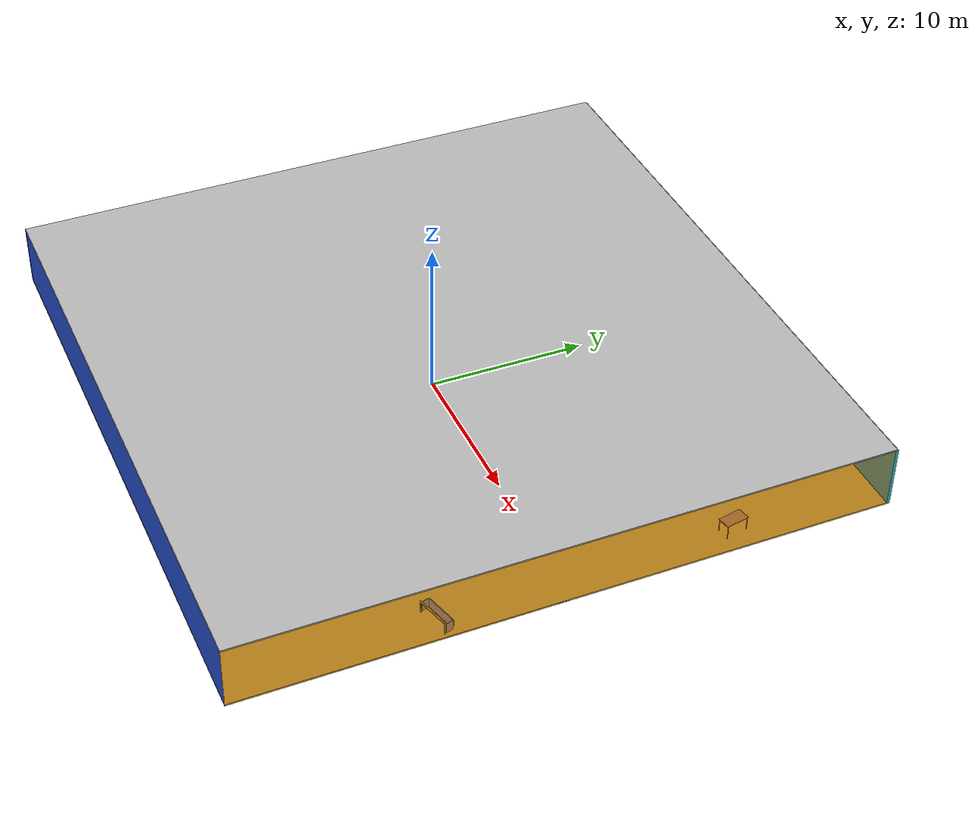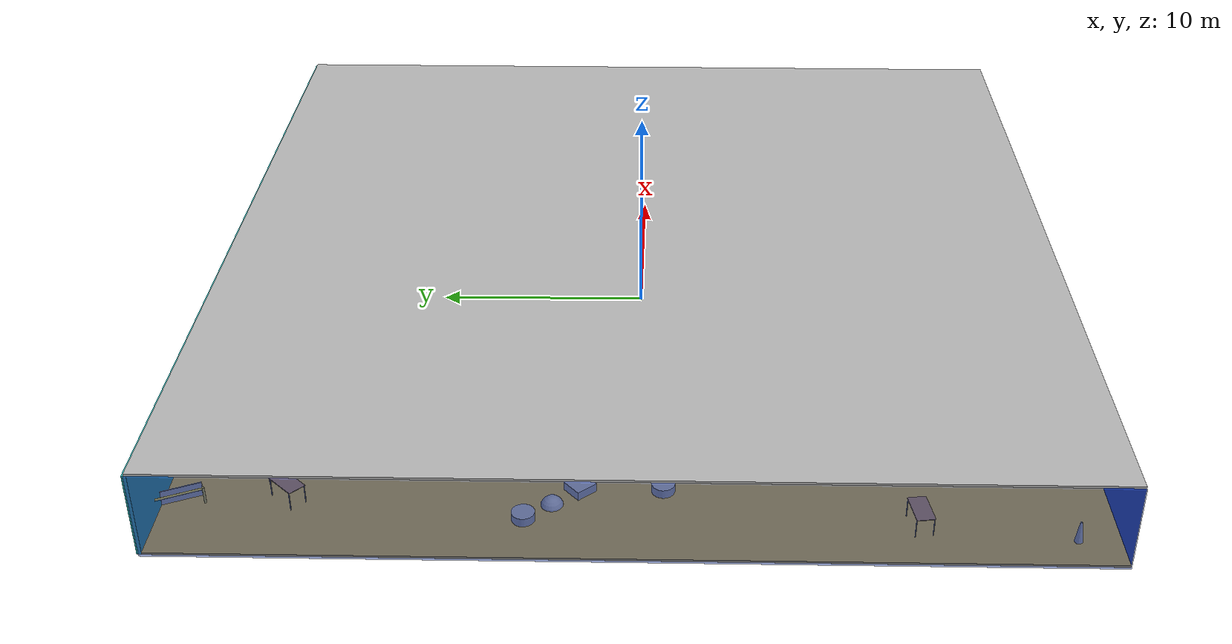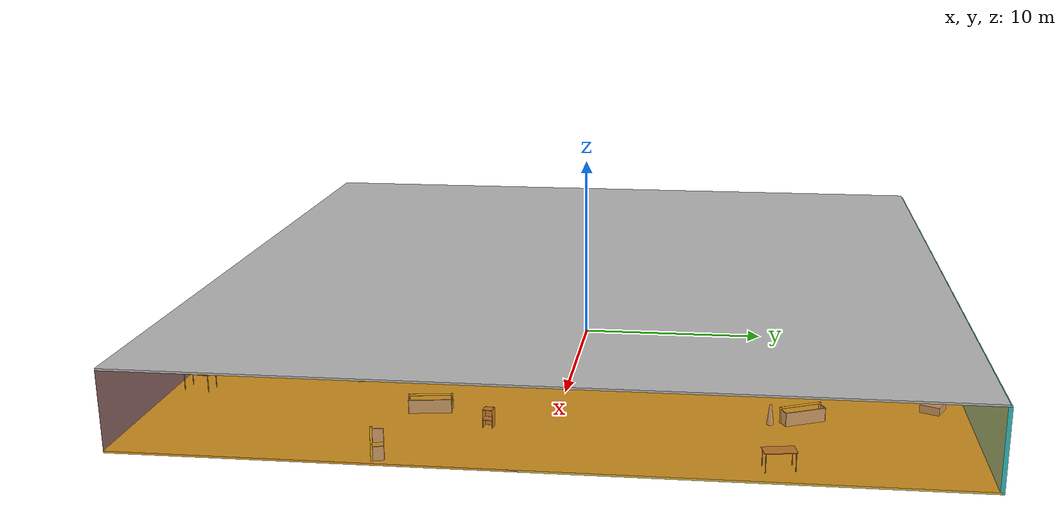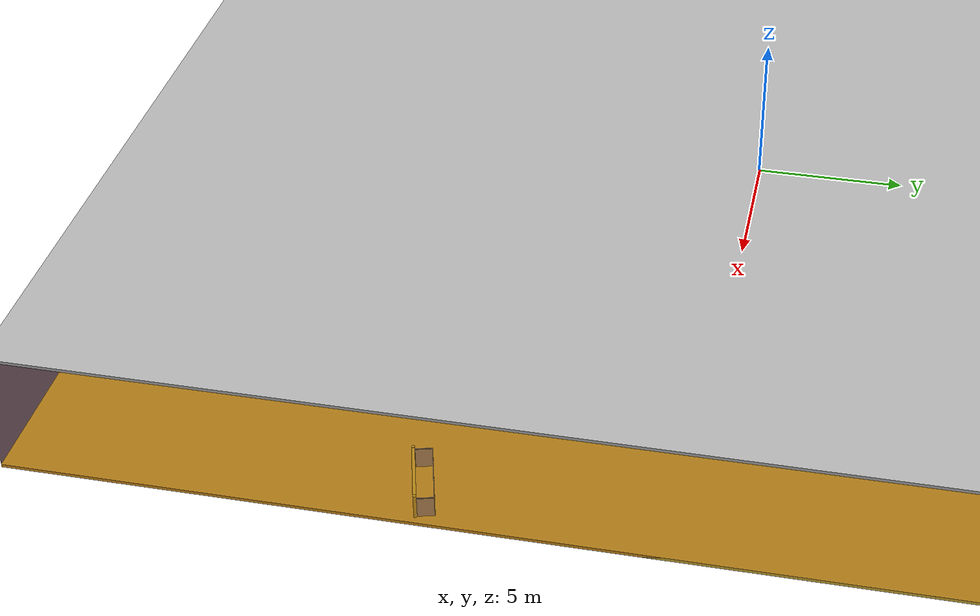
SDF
<sdf version="1.4">
 <world name="default">
  <physics type="ode">
   <max_step_size>0.001</max_step_size>
   <real_time_factor>1</real_time_factor>
   <real_time_update_rate>1000</real_time_update_rate>
   <gravity>0 0 -9.8</gravity>
  </physics>
  <scene><ambient>0.4 0.4 0.4 1</ambient><background>0.7 0.7 0.7 1</background><shadows>1</shadows></scene>
  <model name="Surrounding">
   <static>1</static>
   <link name="Ceiling">
    <collision name="Ceiling_Collision"><geometry><box><size>40 40 0.1</size></box></geometry></collision>
    <visual name="Ceiling_Visual">
     <geometry><box><size>40 40 0.1</size></box></geometry>
     <material>
      <script><uri>file://media/materials/scripts/gazebo.material</uri><name>Gazebo/LightOff</name></script>
     </material>
    </visual>
    <pose>0 0 4.05 0 0 0</pose>
   </link>
   <link name="Wall_South">
    <collision name="Wall_South_Collision">
     <geometry><box><size>40 0 4</size></box></geometry>
     <pose>0 0 2 0 -0 0</pose>
    </collision>
    <visual name="Wall_South_Visual">
     <pose>0 0 2 0 -0 0</pose>
     <geometry><box><size>40 0 4</size></box></geometry>
     <material>
      <script><uri>file://media/materials/scripts/gazebo.material</uri><name>Gazebo/Blue</name></script>
     </material>
    </visual>
    <velocity_decay><linear>0</linear><angular>0</angular></velocity_decay>
    <pose>0 -20 0 0 -0 0</pose>
   </link>
   <link name="Wall_East">
    <collision name="Wall_21_Collision">
     <geometry><box><size>40 0 4</size></box></geometry>
     <pose>0 0 2 0 -0 0</pose>
    </collision>
    <visual name="Wall_21_Visual">
     <pose>0 0 2 0 -0 0</pose>
     <geometry><box><size>40 0 4</size></box></geometry>
     <material>
      <script>
       <uri>file://media/materials/scripts/gazebo.material</uri>
       <name>Gazebo/OrangeTransparent</name>
      </script>
     </material>
    </visual>
    <velocity_decay><linear>0</linear><angular>0</angular></velocity_decay>
    <pose>20 0 0 0 -0 1.5708</pose>
   </link>
   <link name="Wall_North">
    <collision name="Wall_22_Collision">
     <geometry><box><size>40 0.2 4</size></box></geometry>
     <pose>0 0 2 0 -0 0</pose>
    </collision>
    <visual name="Wall_22_Visual">
     <pose>0 0 2 0 -0 0</pose>
     <geometry><box><size>40 0.2 4</size></box></geometry>
     <material>
      <script><uri>file://media/materials/scripts/gazebo.material</uri><name>Gazebo/Turquoise</name></script>
     </material>
    </visual>
    <velocity_decay><linear>0</linear><angular>0</angular></velocity_decay>
    <pose>0 20 0 0 -0 0</pose>
   </link>
   <link name="Wall_West">
    <collision name="Wall_23_Collision">
     <geometry><box><size>40 0.2 4</size></box></geometry>
     <pose>0 0 2 0 -0 0</pose>
    </collision>
    <visual name="Wall_23_Visual">
     <pose>0 0 2 0 -0 0</pose>
     <geometry><box><size>40 0.2 4</size></box></geometry>
     <material>
      <script><uri>file://media/materials/scripts/gazebo.material</uri><name>Gazebo/BlueTransparent</name></script>
     </material>
    </visual>
    <velocity_decay><linear>0</linear><angular>0</angular></velocity_decay>
    <pose>-20 0 0 0 0 -1.5708</pose>
   </link>
   <link name="Ground_link">
    <collision name="collision">
     <pose>0 0 .05 0 -0 0</pose>
     <geometry><box><size>40 40 0.1</size></box></geometry>
    </collision>
    <visual name="visual">
     <pose>0 0 .05 0 -0 0</pose>
     <geometry><box><size>40 40 0.1</size></box></geometry>
     <material>
      <script><uri>file://media/materials/scripts/gazebo.material</uri><name>Gazebo/Gold</name></script>
     </material>
    </visual>
   </link>
   <static>1</static>
  </model>
  <spherical_coordinates>
   <surface_model>EARTH_WGS84</surface_model>
   <latitude_deg>0</latitude_deg>
   <longitude_deg>0</longitude_deg>
   <elevation>0</elevation>
   <heading_deg>0</heading_deg>
  </spherical_coordinates>
  <light name="lightball_0" type="diffuse">
   <diffuse>0.8 0.8 0.8 1</diffuse>
   <specular>0.2 0.2 0.2 1</specular>
   <attenuation>
    <range>100</range>
    <constant>0.7</constant>
    <linear>0.01</linear>
    <quadratic>0.001</quadratic>
   </attenuation>
   <direction>-0.5 0.1 -0.9</direction>
   <pose>-9.14711797379 0.0302854607326 0.97733894937 0 0 0</pose>
  </light>
  <light name="lightball_1" type="diffuse">
   <diffuse>0.8 0.8 0.8 1</diffuse>
   <specular>0.2 0.2 0.2 1</specular>
   <attenuation>
    <range>100</range>
    <constant>0.7</constant>
    <linear>0.01</linear>
    <quadratic>0.001</quadratic>
   </attenuation>
   <direction>-0.5 0.1 -0.9</direction>
   <pose>-2.559554527 0.675338464161 1.69239967104 0 0 0</pose>
  </light>
  <light name="lightball_2" type="diffuse">
   <diffuse>0.8 0.8 0.8 1</diffuse>
   <specular>0.2 0.2 0.2 1</specular>
   <attenuation>
    <range>100</range>
    <constant>0.7</constant>
    <linear>0.01</linear>
    <quadratic>0.001</quadratic>
   </attenuation>
   <direction>-0.5 0.1 -0.9</direction>
   <pose>4.79390685042 11.7927762003 3.75669449589 0 0 0</pose>
  </light>
  <light name="lightball_3" type="diffuse">
   <diffuse>0.8 0.8 0.8 1</diffuse>
   <specular>0.2 0.2 0.2 1</specular>
   <attenuation>
    <range>100</range>
    <constant>0.7</constant>
    <linear>0.01</linear>
    <quadratic>0.001</quadratic>
   </attenuation>
   <direction>-0.5 0.1 -0.9</direction>
   <pose>-17.0854105801 2.90615077735 1.0275115421 0 0 0</pose>
  </light>
  <light name="lightball_4" type="diffuse">
   <diffuse>0.8 0.8 0.8 1</diffuse>
   <specular>0.2 0.2 0.2 1</specular>
   <attenuation>
    <range>100</range>
    <constant>0.7</constant>
    <linear>0.01</linear>
    <quadratic>0.001</quadratic>
   </attenuation>
   <direction>-0.5 0.1 -0.9</direction>
   <pose>-11.8379347103 9.07253453984 1.19396693109 0 0 0</pose>
  </light>
  <light name="lightball_5" type="diffuse">
   <diffuse>0.8 0.8 0.8 1</diffuse>
   <specular>0.2 0.2 0.2 1</specular>
   <attenuation>
    <range>100</range>
    <constant>0.7</constant>
    <linear>0.01</linear>
    <quadratic>0.001</quadratic>
   </attenuation>
   <direction>-0.5 0.1 -0.9</direction>
   <pose>-7.09599055931 -0.621411242781 3.40086395792 0 0 0</pose>
  </light>
  <light name="lightball_6" type="diffuse">
   <diffuse>0.8 0.8 0.8 1</diffuse>
   <specular>0.2 0.2 0.2 1</specular>
   <attenuation>
    <range>100</range>
    <constant>0.7</constant>
    <linear>0.01</linear>
    <quadratic>0.001</quadratic>
   </attenuation>
   <direction>-0.5 0.1 -0.9</direction>
   <pose>14.3928342528 -0.623568273838 3.04630480233 0 0 0</pose>
  </light>
  <light name="lightball_7" type="diffuse">
   <diffuse>0.8 0.8 0.8 1</diffuse>
   <specular>0.2 0.2 0.2 1</specular>
   <attenuation>
    <range>100</range>
    <constant>0.7</constant>
    <linear>0.01</linear>
    <quadratic>0.001</quadratic>
   </attenuation>
   <direction>-0.5 0.1 -0.9</direction>
   <pose>-19.7500414011 -7.95238867408 2.75653988626 0 0 0</pose>
  </light>
  <light name="lightball_8" type="diffuse">
   <diffuse>0.8 0.8 0.8 1</diffuse>
   <specular>0.2 0.2 0.2 1</specular>
   <attenuation>
    <range>100</range>
    <constant>0.7</constant>
    <linear>0.01</linear>
    <quadratic>0.001</quadratic>
   </attenuation>
   <direction>-0.5 0.1 -0.9</direction>
   <pose>-9.35666155599 14.6173086876 1.51261561231 0 0 0</pose>
  </light>
  <light name="lightball_9" type="diffuse">
   <diffuse>0.8 0.8 0.8 1</diffuse>
   <specular>0.2 0.2 0.2 1</specular>
   <attenuation>
    <range>100</range>
    <constant>0.7</constant>
    <linear>0.01</linear>
    <quadratic>0.001</quadratic>
   </attenuation>
   <direction>-0.5 0.1 -0.9</direction>
   <pose>1.2393024376 0.680878118314 1.33900714512 0 0 0</pose>
  </light>
  <include>
   <uri>model://construction_cone</uri>
   <pose>-18.5531841802 -18.1974622764 0 0 0 2.46958218283</pose>
  </include>
  <include><uri>model://table</uri><pose>-17.6872047277 -11.8347819193 0 0 0 0.147359776407</pose></include>
  <include>
   <uri>model://textured_shapes</uri>
   <pose>-16.6112806783 3.46816683254 0 0 0 0.712699307478</pose>
  </include>
  <include><uri>model://table</uri><pose>-16.447023225 14.6250378053 0 0 0 0.810441563024</pose></include>
  <include>
   <uri>model://robocup_3Dsim_goal</uri>
   <pose>-17.2038095809 19.0556117142 0 0 0 0.415011093853</pose>
  </include>
  <include>
   <uri>model://textured_shapes</uri>
   <pose>-14.2909135204 -0.50512796118 0 0 0 2.05902495346</pose>
  </include>
  <include><uri>model://cabinet</uri><pose>-15.2841935217 15.4085805851 0 0 0 0.021811895229</pose></include>
  <include><uri>model://cabinet</uri><pose>-9.16331825169 7.57194316551 0 0 0 2.38481830487</pose></include>
  <include>
   <uri>model://textured_shapes</uri>
   <pose>-8.4517465398 13.4000032896 0 0 0 0.222998370371</pose>
  </include>
  <include><uri>model://cabinet</uri><pose>-9.36404114477 14.9947044828 0 0 0 0.229980196838</pose></include>
  <include>
   <uri>model://construction_cone</uri>
   <pose>-2.09329494845 -10.9066282312 0 0 0 2.71679154459</pose>
  </include>
  <include><uri>model://cabinet</uri><pose>-0.0171613612647 19.5190135571 0 0 0 1.11007353145</pose></include>
  <include><uri>model://cabinet</uri><pose>2.31721365959 15.5707730144 0 0 0 0.381848999546</pose></include>
  <include><uri>model://cabinet</uri><pose>5.95049693049 4.22167128413 0 0 0 1.64458316236</pose></include>
  <include><uri>model://cabinet</uri><pose>9.749211877 -10.7735489063 0 0 0 2.1236432921</pose></include>
  <include>
   <uri>model://textured_shapes</uri>
   <pose>9.4964707503 18.9387414992 0 0 0 1.13203122749</pose>
  </include>
  <include><uri>model://table</uri><pose>11.8426072942 -18.6481028486 0 0 0 1.39097881398</pose></include>
  <include>
   <uri>model://robocup_3Dsim_goal</uri>
   <pose>13.2989814658 -6.26486428623 0 0 0 0.149319717632</pose>
  </include>
  <include>
   <uri>model://construction_cone</uri>
   <pose>13.4184439389 10.3252362141 0 0 0 0.142629229012</pose>
  </include>
  <include>
   <uri>model://robocup_3Dsim_goal</uri>
   <pose>12.7331430012 11.7725627161 0 0 0 0.439666277701</pose>
  </include>
  <include><uri>model://cabinet</uri><pose>15.214509452 -3.02249440373 0 0 0 3.02431318243</pose></include>
  <include>
   <uri>model://robocup_3Dsim_goal</uri>
   <pose>18.7310517667 -7.79657726498 0 0 0 1.8440704593</pose>
  </include>
  <include><uri>model://table</uri><pose>18.5938859116 10.6055940642 0 0 0 1.75339847948</pose></include>
 </world>
</sdf>

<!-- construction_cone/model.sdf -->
<sdf version="1.5">
  <model name="Construction Cone">
    <link name="link">
      <collision name="collision">
        <geometry>
          <mesh>
            <scale>10 10 10</scale>
            <uri>file://isr-testbed/construction_cone/meshes/construction_cone.dae</uri>
          </mesh>
        </geometry>
      </collision>
      <visual name="visual">
        <geometry>
          <mesh>
            <scale>10 10 10</scale>
            <uri>file://isr-testbed/construction_cone/meshes/construction_cone.dae</uri>
          </mesh>
        </geometry>
      </visual>
    </link>
  </model>
</sdf>

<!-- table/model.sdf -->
<sdf version="1.5">
  <model name="table">
    <static>true</static>
    <link name="link">
      <collision name="surface">
        <pose>0 0 1.0 0 0 0</pose>
        <geometry>
          <box>
            <size>1.5 0.8 0.03</size>
          </box>
        </geometry>
        <surface>
          <friction>
            <ode>
              <mu>0.6</mu>
              <mu2>0.6</mu2>
            </ode>
          </friction>
        </surface>
      </collision>
      <visual name="visual1">
        <pose>0 0 1.0 0 0 0</pose>
        <geometry>
          <box>
            <size>1.5 0.8 0.03</size>
          </box>
        </geometry>
        <material>
          <script>
            <uri>model://media/materials/scripts/gazebo.material</uri>
            <name>Gazebo/Wood</name>
          </script>
        </material>
      </visual>
      <collision name="front_left_leg">
        <pose>0.68 0.38 0.5 0 0 0</pose>
        <geometry>
          <cylinder>
            <radius>0.02</radius>
            <length>1.0</length>
          </cylinder>
        </geometry>
      </collision>
      <visual name="front_left_leg">
        <pose>0.68 0.38 0.5 0 0 0</pose>
        <geometry>
          <cylinder>
            <radius>0.02</radius>
            <length>1.0</length>
          </cylinder>
        </geometry>
        <material>
          <script>
            <uri>model://media/materials/scripts/gazebo.material</uri>
            <name>Gazebo/Grey</name>
          </script>
        </material>
      </visual>
      <collision name="front_right_leg">
        <pose>0.68 -0.38 0.5 0 0 0</pose>
        <geometry>
          <cylinder>
            <radius>0.02</radius>
            <length>1.0</length>
          </cylinder>
        </geometry>
      </collision>
      <visual name="front_right_leg">
        <pose>0.68 -0.38 0.5 0 0 0</pose>
        <geometry>
          <cylinder>
            <radius>0.02</radius>
            <length>1.0</length>
          </cylinder>
        </geometry>
        <material>
          <script>
            <uri>model://media/materials/scripts/gazebo.material</uri>
            <name>Gazebo/Grey</name>
          </script>
        </material>
      </visual>
      <collision name="back_right_leg">
        <pose>-0.68 -0.38 0.5 0 0 0</pose>
        <geometry>
          <cylinder>
            <radius>0.02</radius>
            <length>1.0</length>
          </cylinder>
        </geometry>
      </collision>
      <visual name="back_right_leg">
        <pose>-0.68 -0.38 0.5 0 0 0</pose>
        <geometry>
          <cylinder>
            <radius>0.02</radius>
            <length>1.0</length>
          </cylinder>
        </geometry>
        <material>
          <script>
            <uri>model://media/materials/scripts/gazebo.material</uri>
            <name>Gazebo/Grey</name>
          </script>
        </material>
      </visual>
      <collision name="back_left_leg">
        <pose>-0.68 0.38 0.5 0 0 0</pose>
        <geometry>
          <cylinder>
            <radius>0.02</radius>
            <length>1.0</length>
          </cylinder>
        </geometry>
      </collision>
      <visual name="back_left_leg">
        <pose>-0.68 0.38 0.5 0 0 0</pose>
        <geometry>
          <cylinder>
            <radius>0.02</radius>
            <length>1.0</length>
          </cylinder>
        </geometry>
        <material>
          <script>
            <uri>model://media/materials/scripts/gazebo.material</uri>
            <name>Gazebo/Grey</name>
          </script>
        </material>
      </visual>
    </link>
  </model>
</sdf>

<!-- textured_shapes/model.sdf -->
<sdf version="1.6">
  <model name="textured_shapes">
    <pose>0 0 0.5 0 0 0</pose>
    <link name="box">
      <pose>0 -1.5 0 0 0 0</pose>
      <collision name="collision">
        <geometry>
          <box>
            <size>1 1 1</size>
          </box>
        </geometry>
      </collision>
      <visual name="visual">
        <geometry>
          <box>
            <size>1 1 1</size>
          </box>
        </geometry>
        <material>
          <script>
            <uri>model://../model_source/models/textured_shapes/materials/scripts</uri>
            <uri>model://../model_source/models/textured_shapes/materials/textures</uri>
            <name>TexturedShape/Squares</name>
          </script>
        </material>
      </visual>
    </link>
    <link name="sphere">
      <collision name="collision">
        <geometry>
          <sphere>
            <radius>0.5</radius>
          </sphere>
        </geometry>
      </collision>
      <visual name="visual">
        <geometry>
          <sphere>
            <radius>0.5</radius>
          </sphere>
        </geometry>
        <material>
          <script>
            <uri>model://../model_source/models/textured_shapes/materials/scripts</uri>
            <uri>model://../model_source/models/textured_shapes/materials/textures</uri>
            <name>TexturedShape/Squares</name>
          </script>
        </material>
      </visual>
    </link>
    <link name="cylinder">
      <pose>0 1.5 0 0 0 0</pose>
      <collision name="collision">
        <geometry>
          <cylinder>
            <radius>0.5</radius>
            <length>1</length>
          </cylinder>
        </geometry>
      </collision>
      <visual name="visual">
        <geometry>
          <cylinder>
            <radius>0.5</radius>
            <length>1</length>
          </cylinder>
        </geometry>
        <material>
          <script>
            <uri>model://../model_source/models/textured_shapes/materials/scripts</uri>
            <uri>model://../model_source/models/textured_shapes/materials/textures</uri>
            <name>TexturedShape/Squares</name>
          </script>
        </material>
      </visual>
    </link>
  </model>
</sdf>

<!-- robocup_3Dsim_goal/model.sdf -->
<sdf version="1.5">
  <model name="robocup_3d_goal">
    <static>true</static>
    <link name="left_post">
      <pose>0 1.05 0.45 0 0 0</pose>
      <collision name="collision">
        <geometry>
          <cylinder>
            <radius>0.05</radius>
            <length>0.9</length>
          </cylinder>
        </geometry>
      </collision>
      <visual name="visual">
        <geometry>
          <cylinder>
            <radius>0.05</radius>
            <length>0.9</length>
          </cylinder>
        </geometry>
        <material>
          <script>
            <uri>file://media/materials/scripts/gazebo.material</uri>
            <name>Gazebo/ZincYellow</name>
          </script>
        </material>
      </visual>
    </link>
    <link name="left_support_horiz_lower">
      <pose>0.30 1.05 0.01 0 0 0</pose>
      <collision name="collision">
        <geometry>
          <box>
            <size>0.50 0.02 0.02</size>
          </box>
        </geometry>
      </collision>
      <visual name="visual">
        <geometry>
          <box>
            <size>0.50 0.02 0.02</size>
          </box>
        </geometry>
        <material>
          <script>
            <uri>file://media/materials/scripts/gazebo.material</uri>
            <name>Gazebo/White</name>
          </script>
        </material>
      </visual>
    </link>
    <link name="left_support_horiz_upper">
      <pose>0.30 1.05 0.79 0 0 0</pose>
      <collision name="collision">
        <geometry>
          <box>
            <size>0.50 0.02 0.02</size>
          </box>
        </geometry>
      </collision>
      <visual name="visual">
        <geometry>
          <box>
            <size>0.50 0.02 0.02</size>
          </box>
        </geometry>
        <material>
          <script>
            <uri>file://media/materials/scripts/gazebo.material</uri>
            <name>Gazebo/White</name>
          </script>
        </material>
      </visual>
    </link>
    <link name="left_support_vertical">
      <pose>0.56 1.05 0.4 0 1.5708 0</pose>
      <collision name="collision">
        <geometry>
          <box>
            <size>0.80 0.02 0.02</size>
          </box>
        </geometry>
      </collision>
      <visual name="visual">
        <geometry>
          <box>
            <size>0.80 0.02 0.02</size>
          </box>
        </geometry>
        <material>
          <script>
            <uri>file://media/materials/scripts/gazebo.material</uri>
            <name>Gazebo/White</name>
          </script>
        </material>
      </visual>
    </link>
    <link name="right_support_horiz_lower">
      <pose>0.30 -1.05 0.01 0 0 0</pose>
      <collision name="collision">
        <geometry>
          <box>
            <size>0.50 0.02 0.02</size>
          </box>
        </geometry>
      </collision>
      <visual name="visual">
        <geometry>
          <box>
            <size>0.50 0.02 0.02</size>
          </box>
        </geometry>
        <material>
          <script>
            <uri>file://media/materials/scripts/gazebo.material</uri>
            <name>Gazebo/White</name>
          </script>
        </material>
      </visual>
    </link>
    <link name="right_support_horiz_upper">
      <pose>0.30 -1.05 0.79 0 0 0</pose>
      <collision name="collision">
        <geometry>
          <box>
            <size>0.50 0.02 0.02</size>
          </box>
        </geometry>
      </collision>
      <visual name="visual">
        <geometry>
          <box>
            <size>0.50 0.02 0.02</size>
          </box>
        </geometry>
        <material>
          <script>
            <uri>file://media/materials/scripts/gazebo.material</uri>
            <name>Gazebo/White</name>
          </script>
        </material>
      </visual>
    </link>
    <link name="right_support_vertical">
      <pose>0.56 -1.05 0.4 0 1.5708 0</pose>
      <collision name="collision">
        <geometry>
          <box>
            <size>0.80 0.02 0.02</size>
          </box>
        </geometry>
      </collision>
      <visual name="visual">
        <geometry>
          <box>
            <size>0.80 0.02 0.02</size>
          </box>
        </geometry>
        <material>
          <script>
            <uri>file://media/materials/scripts/gazebo.material</uri>
            <name>Gazebo/White</name>
          </script>
        </material>
      </visual>
    </link>
    <link name="center_support_horiz_lower">
      <pose>0.56 0 0.01 0 1.5708 0</pose>
      <collision name="collision">
        <geometry>
          <box>
            <size>0.02 2.08 0.02</size>
          </box>
        </geometry>
      </collision>
      <visual name="visual">
        <geometry>
          <box>
            <size>0.02 2.08 0.02</size>
          </box>
        </geometry>
        <material>
          <script>
            <uri>file://media/materials/scripts/gazebo.material</uri>
            <name>Gazebo/White</name>
          </script>
        </material>
      </visual>
    </link>
    <link name="center_support_horiz_upper">
      <pose>0.56 0 0.79 0 1.5708 0</pose>
      <collision name="collision">
        <geometry>
          <box>
            <size>0.02 2.08 0.02</size>
          </box>
        </geometry>
      </collision>
      <visual name="visual">
        <geometry>
          <box>
            <size>0.02 2.08 0.02</size>
          </box>
        </geometry>
        <material>
          <script>
            <uri>file://media/materials/scripts/gazebo.material</uri>
            <name>Gazebo/White</name>
          </script>
        </material>
      </visual>
    </link>
    <link name="right_post">
      <pose>0 -1.05 0.45 0 0 0</pose>
      <collision name="collision">
        <geometry>
          <cylinder>
            <radius>0.05</radius>
            <length>0.9</length>
          </cylinder>
        </geometry>
      </collision>
      <visual name="visual">
        <geometry>
          <cylinder>
            <radius>0.05</radius>
            <length>0.9</length>
          </cylinder>
        </geometry>
        <material>
          <script>
            <uri>file://media/materials/scripts/gazebo.material</uri>
            <name>Gazebo/ZincYellow</name>
          </script>
        </material>
      </visual>
    </link>
    <link name="crossbar">
      <pose>0 0 0.85 1.57 1.57 0</pose>
      <collision name="collision">
        <geometry>
          <cylinder>
            <radius>0.05</radius>
            <length>2.0</length>
          </cylinder>
        </geometry>
      </collision>
      <visual name="visual">
        <geometry>
          <cylinder>
            <radius>0.05</radius>
            <length>2.0</length>
          </cylinder>
        </geometry>
        <material>
          <script>
            <uri>file://media/materials/scripts/gazebo.material</uri>
            <name>Gazebo/ZincYellow</name>
          </script>
        </material>
      </visual>
    </link>
    <link name="center_net">
      <pose>0.56 0 0.40 0 0 0</pose>
      <collision name="collision">
        <geometry>
          <box>
            <size>0.01 2.1 0.80</size>
          </box>
        </geometry>
      </collision>
      <visual name="visual">
        <geometry>
          <box>
            <size>0.01 2.1 0.80</size>
          </box>
        </geometry>
        <material>
          <script>
            <uri>model://../model_source/models/robocup09_spl_field/materials/scripts/</uri>
            <uri>model://../model_source/models/robocup09_spl_field/materials/textures/</uri>
            <name>RoboCup/Net</name>
          </script>
        </material>
      </visual>
    </link>
    <link name="left_net">
      <pose>0.30 1.05 0.40 0 0 0</pose>
      <collision name="collision">
        <geometry>
          <box>
            <size>0.50 0.01 0.76</size>
          </box>
        </geometry>
      </collision>
      <visual name="visual">
        <geometry>
          <box>
            <size>0.50 0.01 0.76</size>
          </box>
        </geometry>
        <material>
          <script>
            <uri>model://../model_source/models/robocup09_spl_field/materials/scripts/</uri>
            <uri>model://../model_source/models/robocup09_spl_field/materials/textures/</uri>
            <name>RoboCup/Net</name>
          </script>
        </material>
      </visual>
    </link>
    <link name="right_net">
      <pose>0.30 -1.05 0.40 0 0 0</pose>
      <collision name="collision">
        <geometry>
          <box>
            <size>0.50 0.01 0.76</size>
          </box>
        </geometry>
      </collision>
      <visual name="visual">
        <geometry>
          <box>
            <size>0.50 0.01 0.76</size>
          </box>
        </geometry>
        <material>
          <script>
            <uri>model://../model_source/models/robocup09_spl_field/materials/scripts/</uri>
            <uri>model://../model_source/models/robocup09_spl_field/materials/textures/</uri>
            <name>RoboCup/Net</name>
          </script>
        </material>
      </visual>
    </link>
  </model>
</sdf>

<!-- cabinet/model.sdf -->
<sdf version="1.5">
  <model name="cabinet">
    <static>true</static>
    <link name="cabinet_bottom_plate">
      <inertial>
        <pose>0 0 -1 0 0 0</pose>
        <inertia>
          <ixx>2.050000</ixx>
          <ixy>0</ixy>
          <ixz>0</ixz>
          <iyy>2.050000</iyy>
          <iyz>0</iyz>
          <izz>2.050000</izz>
        </inertia>
        <mass>25.000000</mass>
      </inertial>
      <collision name="cabinet_bottom_plate_geom">
        <pose>0 0 0.010000 0 0 0</pose>
        <geometry>
          <box>
            <size>0.450000 0.450000 0.020000</size>
          </box>
        </geometry>
      </collision>
      <visual name="cabinet_bottom_plate_geom_visual">
        <pose>0 0 0.010000 0 0 0</pose>
        <geometry>
          <box>
            <size>0.450000 0.450000 0.020000</size>
          </box>
        </geometry>
        <material>
          <script>
            <uri>model://media/materials/scripts/gazebo.material</uri>
            <name>Gazebo/Wood</name>
          </script>
        </material>
      </visual>
      <collision name="cabinet_bottom_plate_geom_cabinet_back_plate">
        <pose>0.235000 0 0.510000 0 0 0</pose>
        <geometry>
          <box>
            <size>0.020000 0.450000 1.020000</size>
          </box>
        </geometry>
      </collision>
      <visual name="cabinet_bottom_plate_geom_cabinet_back_plate_visual">
        <pose>0.235000 0 0.510000 0 0 0</pose>
        <geometry>
          <box>
            <size>0.020000 0.450000 1.020000</size>
          </box>
        </geometry>
        <material>
          <script>
            <uri>model://media/materials/scripts/gazebo.material</uri>
            <name>Gazebo/Wood</name>
          </script>
        </material>
      </visual>
      <collision name="cabinet_bottom_plate_geom_cabinet_left_plate">
        <pose>0 0.235000 0.510000 0 0 0</pose>
        <geometry>
          <box>
            <size>0.450000 0.020000 1.020000</size>
          </box>
        </geometry>
      </collision>
      <visual name="cabinet_bottom_plate_geom_cabinet_left_plate_visual">
        <pose>0 0.235000 0.510000 0 0 0</pose>
        <geometry>
          <box>
            <size>0.450000 0.020000 1.020000</size>
          </box>
        </geometry>
        <material>
          <script>
            <uri>model://media/materials/scripts/gazebo.material</uri>
            <name>Gazebo/Wood</name>
          </script>
        </material>
      </visual>
      <collision name="cabinet_bottom_plate_geom_cabinet_middle_plate">
        <pose>0 0 0.510000 0 0 0</pose>
        <geometry>
          <box>
            <size>0.450000 0.450000 0.020000</size>
          </box>
        </geometry>
      </collision>
      <visual name="cabinet_bottom_plate_geom_cabinet_middle_plate_visual">
        <pose>0 0 0.510000 0 0 0</pose>
        <geometry>
          <box>
            <size>0.450000 0.450000 0.020000</size>
          </box>
        </geometry>
        <material>
          <script>
            <uri>model://media/materials/scripts/gazebo.material</uri>
            <name>Gazebo/Wood</name>
          </script>
        </material>
      </visual>
      <collision name="cabinet_bottom_plate_geom_cabinet_right_plate">
        <pose>0 -0.235000 0.510000 0 0 0</pose>
        <geometry>
          <box>
            <size>0.450000 0.020000 1.020000</size>
          </box>
        </geometry>
      </collision>
      <visual name="cabinet_bottom_plate_geom_cabinet_right_plate_visual">
        <pose>0 -0.235000 0.510000 0 0 0</pose>
        <geometry>
          <box>
            <size>0.450000 0.020000 1.020000</size>
          </box>
        </geometry>
        <material>
          <script>
            <uri>model://media/materials/scripts/gazebo.material</uri>
            <name>Gazebo/Wood</name>
          </script>
        </material>
      </visual>
      <collision name="cabinet_bottom_plate_geom_cabinet_top_plate">
        <pose>0 0 1.010000 0 0 0</pose>
        <geometry>
          <box>
            <size>0.450000 0.450000 0.020000</size>
          </box>
        </geometry>
      </collision>
      <visual name="cabinet_bottom_plate_geom_cabinet_top_plate_visual">
        <pose>0 0 1.010000 0 0 0</pose>
        <geometry>
          <box>
            <size>0.450000 0.450000 0.020000</size>
          </box>
        </geometry>
        <material>
          <script>
            <uri>model://media/materials/scripts/gazebo.material</uri>
            <name>Gazebo/Wood</name>
          </script>
        </material>
      </visual>
    </link>
  </model>
</sdf>
